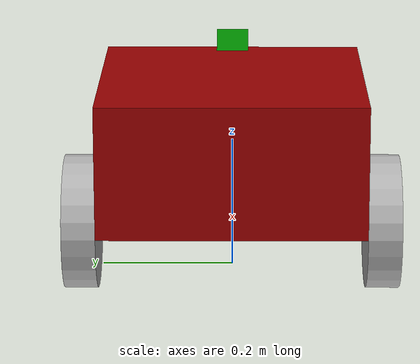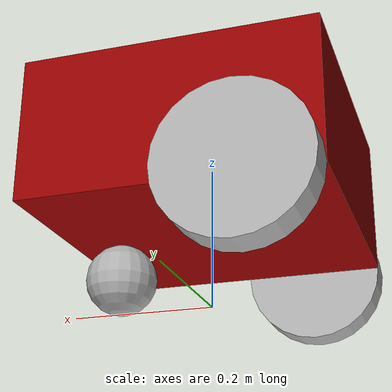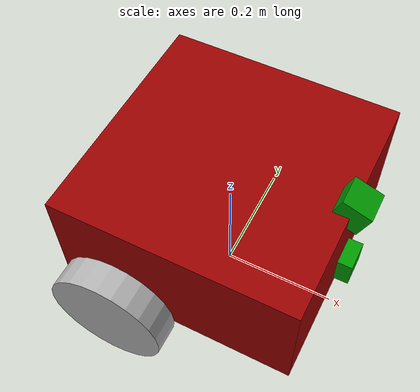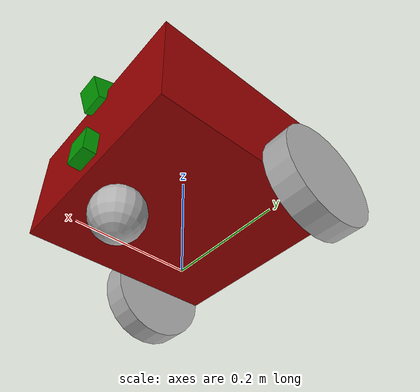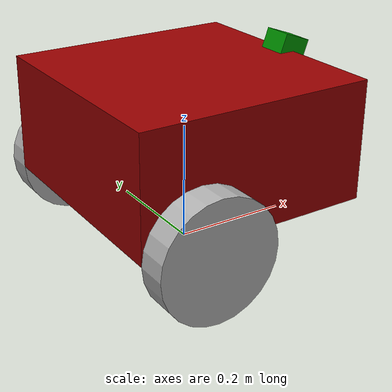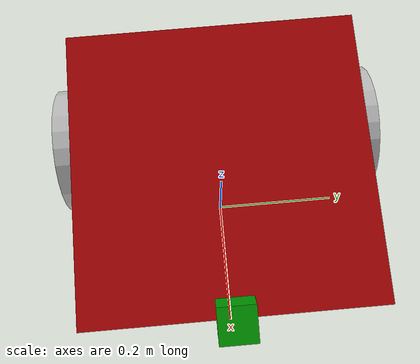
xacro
<?xml version="1.0"?>
<robot name="my_robot" xmlns:xacro="http://www.ros.org/wiki/xacro">
    <material name="green">
        <color rgba="0 0.6 0 1" />
    </material>

    <material name="gray">
        <color rgba="0.7 0.7 0.7 1" />
    </material>

    <material name="red">
        <color rgba="0.6 0 0 1" />
    </material>

    <xacro:macro name="box_inertia" params="m x y z o_xyz o_rpy">
        <inertial>
            <mass value="${m}" />
            <origin xyz="${o_xyz}" rpy="${o_rpy}" />
            <inertia ixx="${(m/12) * (z*z + y*y)}" ixy="0" ixz="0"
                iyy="${(m/12) * (x*x + z*z)}" iyz="0"
                izz="${(m/12) * (x*x + y*y)}" />
        </inertial>
    </xacro:macro>

    <xacro:macro name="cylinder_inertia" params="m r l o_xyz o_rpy">
        <inertial>
            <mass value="${m}" />
            <origin xyz="${o_xyz}" rpy="${o_rpy}" />
            <inertia ixx="${(m/12) * (3*r*r + l*l)}" ixy="0" ixz="0"
                iyy="${(m/12) * (3*r*r + l*l)}" iyz="0"
                izz="${(m/2) * (r*r)}" />
        </inertial>
    </xacro:macro>

    <xacro:macro name="sphere_inertia" params="m r o_xyz o_rpy">
        <inertial>
            <mass value="${m}" />
            <origin xyz="${o_xyz}" rpy="${o_rpy}" />
            <inertia ixx="${(2/5) * m * r * r}" ixy="0" ixz="0"
                iyy="${(2/5) * m * r * r}" iyz="0"
                izz="${(2/5) * m * r * r}" />
        </inertial>
    </xacro:macro>
    <xacro:property name="base_length" value="0.4" />
    <xacro:property name="base_width" value="0.4" />
    <xacro:property name="base_height" value="0.2" />
    <xacro:property name="wheel_radius" value="0.1" />
    <xacro:property name="wheel_length" value="0.05" />

    <link name="base_footprint" />

    <link name="base_link">
        <visual>
            <geometry>
                <box size="${base_length} ${base_width} ${base_height}" />
            </geometry>
            <origin xyz="0 0 ${base_height / 2.0}" rpy="0 0 0" />
            <material name="red" />
        </visual>
        <collision>
            <geometry>
                <box size="${base_length} ${base_width} ${base_height}" />
            </geometry>
            <origin xyz="0 0 ${base_height / 2.0}" rpy="0 0 0" />
        </collision>
        <xacro:box_inertia m="5.0" x="${base_length}" y="${base_width}" z="${base_height}"
            o_xyz="0 0 ${base_height / 2.0}" o_rpy="0 0 0" />
    </link>

    <xacro:macro name="wheel_link" params="prefix">
        <link name="${prefix}_wheel_link">
            <visual>
                <geometry>
                    <cylinder radius="${wheel_radius}" length="${wheel_length}" />
                </geometry>
                <origin xyz="0 0 0" rpy="${pi / 2.0} 0 0" />
                <material name="gray" />
            </visual>
            <collision>
                <geometry>
                    <sphere radius="${wheel_radius}" />
                </geometry>
                <origin xyz="0 0 0" rpy="0 0 0" />
            </collision>
            <xacro:cylinder_inertia m="1.0" r="${wheel_radius}" l="${wheel_length}"
                o_xyz="0 0 0" o_rpy="${pi / 2.0} 0 0" />
        </link>
    </xacro:macro>

    <xacro:wheel_link prefix="right" />
    <xacro:wheel_link prefix="left" />

    <link name="caster_wheel_link">
        <visual>
            <geometry>
                <sphere radius="${wheel_radius / 2.0}" />
            </geometry>
            <origin xyz="0 0 0" rpy="0 0 0" />
            <material name="gray" />
        </visual>
        <collision>
            <geometry>
                <sphere radius="${wheel_radius / 2.0}" />
            </geometry>
            <origin xyz="0 0 0" rpy="0 0 0" />
        </collision>
        <xacro:sphere_inertia m="0.5" r="${wheel_radius / 2.0}"
            o_xyz="0 0 0" o_rpy="0 0 0" />
    </link>

    <joint name="base_joint" type="fixed">
        <parent link="base_footprint" />
        <child link="base_link" />
        <origin xyz="0 0 ${wheel_radius}" rpy="0 0 0" />
    </joint>

    <joint name="base_right_wheel_joint" type="continuous">
        <parent link="base_link" />
        <child link="right_wheel_link" />
        <origin xyz="${-base_length / 4.0} ${-(base_width + wheel_length) / 2.0} 0" rpy="0 0 0" />
        <axis xyz="0 1 0" />
    </joint>

    <joint name="base_left_wheel_joint" type="continuous">
        <parent link="base_link" />
        <child link="left_wheel_link" />
        <origin xyz="${-base_length / 4.0} ${(base_width + wheel_length) / 2.0} 0" rpy="0 0 0" />
        <axis xyz="0 1 0" />
    </joint>

    <joint name="base_caster_wheel_joint" type="fixed">
        <parent link="base_link" />
        <child link="caster_wheel_link" />
        <origin xyz="${base_length / 3.0} 0 ${-wheel_radius / 2.0}" rpy="0 0 0" />
    </joint>
    <gazebo reference="caster_wheel_link">
        <mu1 value="0.1" />
        <mu2 value="0.1" />
    </gazebo>

    <gazebo>
        <plugin
            filename="gz-sim-diff-drive-system"
            name="gz::sim::systems::DiffDrive">
            <left_joint>base_left_wheel_joint</left_joint>
            <right_joint>base_right_wheel_joint</right_joint>
            <frame_id>odom</frame_id>
            <child_frame_id>base_footprint</child_frame_id>
            <wheel_separation>0.45</wheel_separation>
            <wheel_radius>0.1</wheel_radius>
        </plugin>
    </gazebo>

    <gazebo>
        <plugin
            filename="gz-sim-joint-state-publisher-system"
            name="gz::sim::systems::JointStatePublisher">
        </plugin>
    </gazebo>

    <!-- Camera -->
    <link name="camera_link">
        <visual>
            <geometry>
                <box size="0.05 0.05 0.05" />
            </geometry>
            <material name="green" />
        </visual>
        <collision>
            <geometry>
                <box size="0.05 0.05 0.05" />
            </geometry>
        </collision>
        <inertial>
            <mass value="0.1" />
            <inertia ixx="0.0001" iyy="0.0001" izz="0.0001"
                ixy="0.0" ixz="0.0" iyz="0.0" />
        </inertial>
    </link>

    <joint name="camera_joint" type="fixed">
        <parent link="base_link" />
        <child link="camera_link" />
        <origin xyz="${base_length / 2.0} 0 ${base_height}" rpy="0 0.35 0" />
    </joint>

    <gazebo reference="camera_link">
        <sensor name="camera_sensor" type="camera">
            <update_rate>30</update_rate>

            <camera>
                <horizontal_fov>0.70</horizontal_fov>
                <image>
                    <width>990</width>
                    <height>540</height>
                    <format>R8G8B8</format>
                </image>
                <clip>
                    <near>0.1</near>
                    <far>10.0</far>
                </clip>
            </camera>
            <always_on>1</always_on>
            <visualize>true</visualize>
            <topic>/camera</topic>
        </sensor>
    </gazebo>

    <!-- Camera 2 -->
    <link name="camera_link2">
        <visual>
            <geometry>
                <box size="0.05 0.05 0.05" />
            </geometry>
            <material name="green" />
        </visual>
        <collision>
            <geometry>
                <box size="0.05 0.05 0.05" />
            </geometry>
        </collision>
        <inertial>
            <mass value="0.1" />
            <inertia ixx="0.0001" iyy="0.0001" izz="0.0001"
                ixy="0.0" ixz="0.0" iyz="0.0" />
        </inertial>
    </link>

    <joint name="camera_joint2" type="fixed">
        <parent link="base_link" />
        <child link="camera_link2" />
        <origin xyz="${base_length / 2.0} 0 ${base_height / 4.0}" rpy="0 0 0" />
    </joint>

    <gazebo reference="camera_link2">
        <sensor name="camera_sensor2" type="camera">
            <update_rate>30</update_rate>

            <camera>
                <horizontal_fov>1.047</horizontal_fov>
                <image>
                    <width>990</width>
                    <height>540</height>
                    <format>R8G8B8</format>
                </image>
                <clip>
                    <near>0.1</near>
                    <far>100.0</far>
                </clip>
            </camera>
            <always_on>1</always_on>
            <visualize>true</visualize>
            <topic>/visuals</topic>
        </sensor>
    </gazebo>

</robot>
